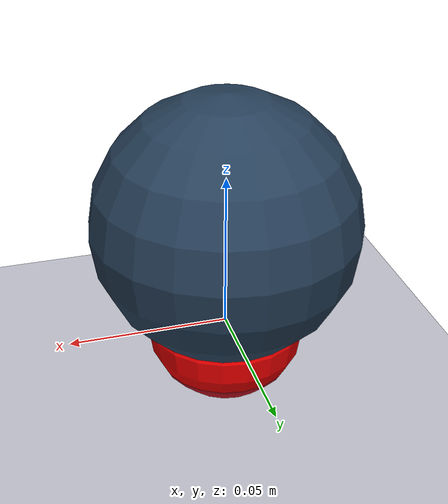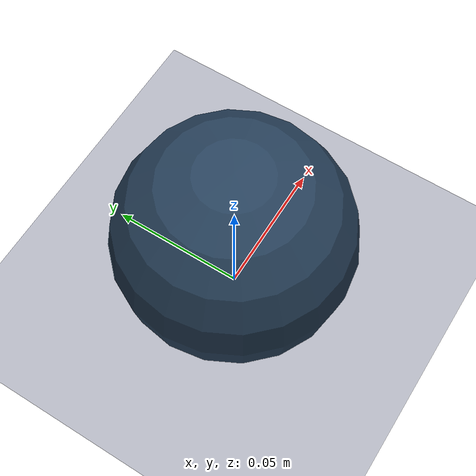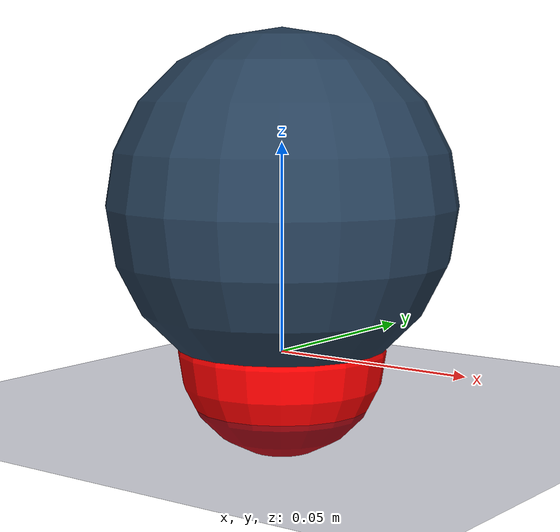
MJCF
<mujoco model="planar point mass">
    <visual>
        <quality shadowsize="2048" />
        <headlight ambient="0.4 0.4 0.4" diffuse="0.8 0.8 0.8" specular="0.1 0.1 0.1" />
    </visual>

  <option impratio="10" iterations="1" ls_iterations="4" timestep="0.01">
    <flag eulerdamp="disable"/>
  </option>

  <custom>
    <numeric data="15" name="max_contact_points"/>
    <numeric data="15" name="max_geom_pairs"/>
  </custom>

    <asset>
        <texture type="skybox" name="skybox" builtin="gradient" mark="random" rgb1="0.4 0.6 0.8" rgb2="0 0 0" markrgb="1 1 1" width="800" height="4800" />
        <texture type="2d" name="grid" builtin="checker" mark="edge" rgb1="0.1 0.2 0.3" rgb2="0.2 0.3 0.4" markrgb="0.2 0.3 0.4" width="300" height="300" />
        <material name="ball_material" texture="skybox" />
        <material name="grid" texture="grid" texuniform="true" reflectance="0.2" />
        <material name="self" rgba="0.7 0.5 0.3 1" />
        <material name="self_default" rgba="0.7 0.5 0.3 1" />
        <material name="self_highlight" rgba="0 0.5 0.3 1" />
        <material name="effector" rgba="0.7 0.4 0.2 1" />
        <material name="effector_default" rgba="0.7 0.4 0.2 1" />
        <material name="effector_highlight" rgba="0 0.5 0.3 1" />
        <material name="decoration" rgba="0.3 0.5 0.7 1" />
        <material name="eye" rgba="0 0.2 1 1" />
        <material name="target" rgba="0.6 0.3 0.3 1" />
        <material name="target_default" rgba="0.6 0.3 0.3 1" />
        <material name="target_highlight" rgba="0.6 0.3 0.3 0.4" />
    </asset>

    <worldbody>
        <geom name="ground" size="1 1 0.1" pos="-0.0 0 -0.013" type="plane" rgba=".123 .140 .28 1" contype="1" conaffinity="2"/>

        <body name="object" pos="0.0 0.0 0.035">
            <joint type="free" damping="0.0001"/>
            <camera name="cam0" pos="0 -0.3 0.3" xyaxes="1 0 0 0 0.7 0.7"/>
            <geom name="pointmass" type="sphere" size=".042" material="grid" mass=".01" condim="3"  group="2" solimp="0.1 0.95 0.1 0.5 2" solref="0.02 1.0"/>
        </body>

        <body mocap="true" name="mocap_target">
          <geom type="sphere" size="0.025" rgba="1 0 0 1" contype="0" conaffinity="0"/>
        </body>
    </worldbody>
</mujoco>
